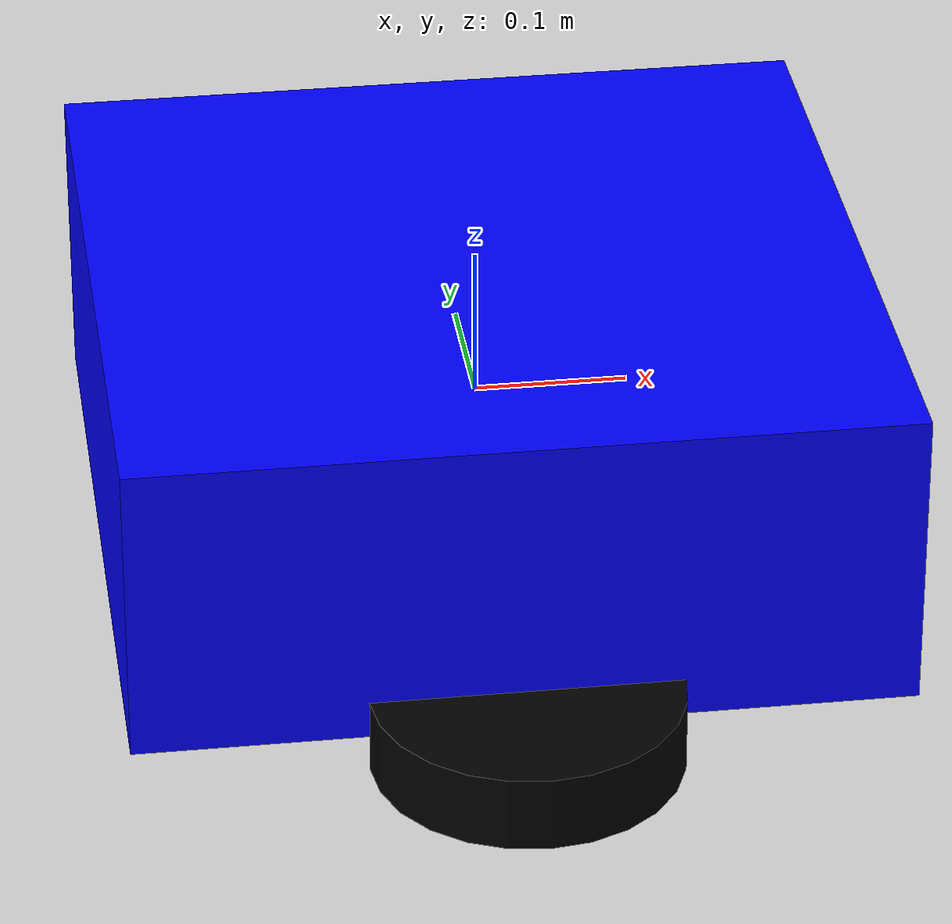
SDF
<?xml version="1.0" ?>
<sdf version="1.10">
  <model name="simple_robot">
    <link name="base_link">
      <pose>0 0 0 0 0 0</pose>
      <inertial>
        <mass>1</mass>
        <inertia>
          <ixx>0.1</ixx>
          <ixy>0</ixy>
          <ixz>0</ixz>
          <iyy>0.1</iyy>
          <iyz>0</iyz>
          <izz>0.1</izz>
        </inertia>
      </inertial>
      <visual name="visual">
        <pose>0 0 0 0 0 0</pose>
        <geometry>
          <box>
            <size>0.5 0.5 0.2</size>
          </box>
        </geometry>
        <material>
          <ambient>0 0 1 1</ambient>
          <diffuse>0 0 1 1</diffuse>
          <specular>0 0 1 1</specular>
        </material>
      </visual>
      <collision name="collision">
        <pose>0 0 0 0 0 0</pose>
        <geometry>
          <box>
            <size>0.5 0.5 0.2</size>
          </box>
        </geometry>
      </collision>
    </link>

    <link name="left_wheel">
      <pose>0 0.25 -0.1 0 0 0</pose>
      <inertial>
        <mass>0.2</mass>
        <inertia>
          <ixx>0.001</ixx>
          <ixy>0</ixy>
          <ixz>0</ixz>
          <iyy>0.001</iyy>
          <iyz>0</iyz>
          <izz>0.001</izz>
        </inertia>
      </inertial>
      <visual name="visual">
        <pose>0 0 0 0 0 0</pose>
        <geometry>
          <cylinder>
            <radius>0.1</radius>
            <length>0.05</length>
          </cylinder>
        </geometry>
        <material>
          <ambient>0 0 0 1</ambient>
          <diffuse>0 0 0 1</diffuse>
          <specular>0 0 0 1</specular>
        </material>
      </visual>
      <collision name="collision">
        <pose>0 0 0 0 0 0</pose>
        <geometry>
          <cylinder>
            <radius>0.1</radius>
            <length>0.05</length>
          </cylinder>
        </geometry>
      </collision>
    </link>

    <link name="right_wheel">
      <pose>0 -0.25 -0.1 0 0 0</pose>
      <inertial>
        <mass>0.2</mass>
        <inertia>
          <ixx>0.001</ixx>
          <ixy>0</ixy>
          <ixz>0</ixz>
          <iyy>0.001</iyy>
          <iyz>0</iyz>
          <izz>0.001</izz>
        </inertia>
      </inertial>
      <visual name="visual">
        <pose>0 0 0 0 0 0</pose>
        <geometry>
          <cylinder>
            <radius>0.1</radius>
            <length>0.05</length>
          </cylinder>
        </geometry>
        <material>
          <ambient>0 0 0 1</ambient>
          <diffuse>0 0 0 1</diffuse>
          <specular>0 0 0 1</specular>
        </material>
      </visual>
      <collision name="collision">
        <pose>0 0 0 0 0 0</pose>
        <geometry>
          <cylinder>
            <radius>0.1</radius>
            <length>0.05</length>
          </cylinder>
        </geometry>
      </collision>
    </link>

    <joint name="left_wheel_joint" type="revolute">
      <parent>base_link</parent>
      <child>left_wheel</child>
      <axis>
        <xyz>0 0 1</xyz>
      </axis>
    </joint>

    <joint name="right_wheel_joint" type="revolute">
      <parent>base_link</parent>
      <child>right_wheel</child>
      <axis>
        <xyz>0 0 1</xyz>
      </axis>
    </joint>
  </model>
</sdf>
